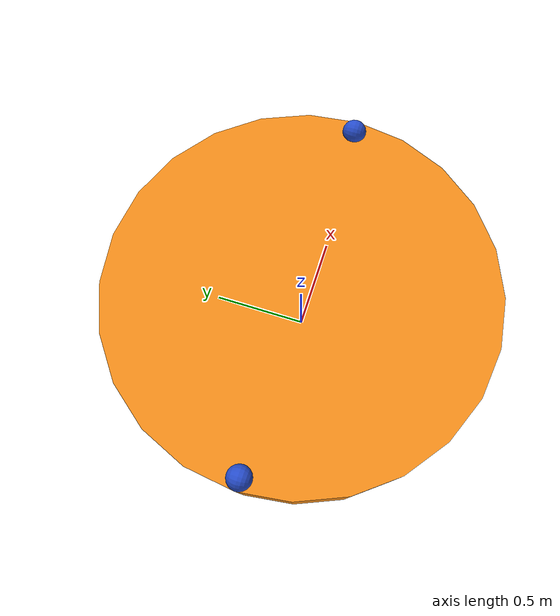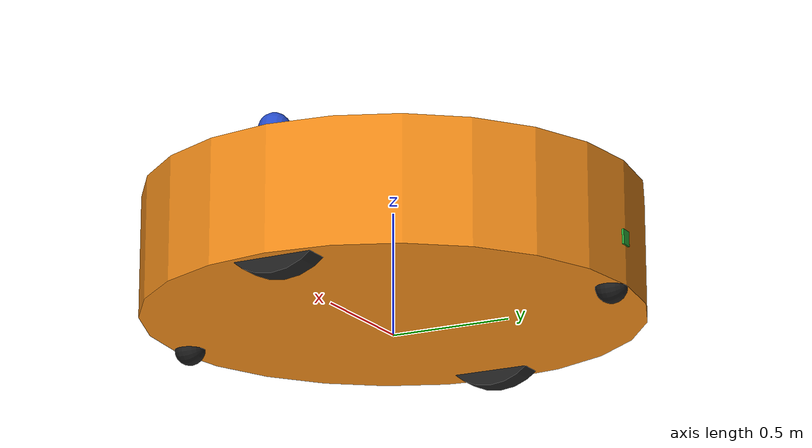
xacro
<?xml version ="1.0"?>
<robot name="basicbot" xmlns:xacro="http://www.ros.org/wiki/xacro">

  <!-- Constants for robot dimensions -->
  <xacro:property name="PI" value="3.1415926535897931"/>

  <!-- Chassis (Cylinder) -->
  <xacro:property name="base_link_mass" value="1"/>
  <xacro:property name="base_link_radius" value="1"/>
  <xacro:property name="base_link_height" value="0.5"/>
  <xacro:property name="chassis_lift_percentage" value="0.25"/> <!-- How much to lift chassis as prop of wheel radius. -->

  <!-- Wheels (Cylinder) -->
  <xacro:property name="wheel_mass" value="0.3"/>
  <xacro:property name="wheel_radius" value="0.25"/>
  <xacro:property name="wheel_width" value="0.1"/>
  <xacro:property name="wheel_vert_offset" value="${wheel_radius}"/>

  <!-- Casters (Spheres) -->
  <xacro:property name="caster_mass" value="0.1"/>
  <xacro:property name="caster_radius" value="${wheel_radius*chassis_lift_percentage}"/>

  <!-- Eyes (Spheres) -->
  <xacro:property name="eye_mass" value="0.1"/>
  <xacro:property name="eye_radius" value="${wheel_radius*chassis_lift_percentage}"/>

  <!-- vertical shift for entire robot -->
  <xacro:property name="vert_offset" value="${wheel_radius*chassis_lift_percentage+base_link_height/2.0}"/>

  <!-- Import all Gazebo customization elements, including colors -->
  <xacro:include filename="$(find basicbot_description)/urdf/basicbot.gazebo"/>

  <!-- Import Rviz colors -->
  <xacro:include filename="$(find basicbot_description)/urdf/materials.xacro"/>

  <!-- Wheel Macro -->
  <xacro:macro name="wheel" params="prefix reflect xmod">
    <link name="${prefix}_wheel" parent="base_link">
      <collision>
        <origin xyz="0 0 0" rpy="0 1.5707 1.5707"/>
        <geometry>
          <cylinder length="${wheel_width}" radius="${wheel_radius}"/>
        </geometry>
      </collision>

      <visual>
        <origin xyz="0 0 0" rpy="0 1.5707 1.5707"/>
        <geometry>
          <cylinder length="${wheel_width}" radius="${wheel_radius}"/>
        </geometry>
        <material name="black"/>
      </visual>

      <inertial>
        <origin xyz="0 0 0" rpy="0 1.5707 1.5707"/>
        <mass value="${wheel_mass}"/>
        <inertia
          ixx="${(wheel_mass/12.0)*(3.0*wheel_radius*wheel_radius + wheel_width*wheel_width)}" ixy="0.0" ixz="0.0"
          iyy="${(wheel_mass/12.0)*(3.0*wheel_radius*wheel_radius + wheel_width*wheel_width)}" iyz="0.0"
          izz="${(wheel_mass*wheel_radius*wheel_radius)/2.0}"
        />
      </inertial>
    </link>

    <joint name="${prefix}_wheel_to_base_link" type="continuous">
      <parent link="base_link"/>
      <child link="${prefix}_wheel"/>
      <limit effort="100" velocity="${PI}"/>
      <axis xyz="0 1 0"/>
      <origin xyz="${reflect*(-wheel_width+base_link_radius)} 0 ${wheel_vert_offset}" rpy="0 1.5707 1.5707"/>
    </joint>
  </xacro:macro>

  <!-- Caster Macro -->
  <xacro:macro name="caster" params="prefix reflect xmod">
    <link name="${prefix}_caster" parent="base_link">
      <collision>
        <origin xyz="0 0 0" rpy="0 1.5707 1.5707"/>
        <geometry>
          <sphere radius="${caster_radius}"/>
        </geometry>
      </collision>

      <visual>
        <origin xyz="0 0 0" rpy="0 1.5707 1.5707"/>
        <geometry>
          <sphere radius="${caster_radius}"/>
        </geometry>
        <material name="black"/>
      </visual>

      <inertial>
        <origin xyz="0 0 0" rpy="0 1.5707 1.5707"/>
        <mass value="${caster_mass}"/>
        <inertia
          ixx="${(2.0*caster_mass*caster_radius*caster_radius)/5.0}" ixy="0.0" ixz="0.0"
          iyy="${(2.0*caster_mass*caster_radius*caster_radius)/5.0}" iyz="0.0"
          izz="${(2.0*caster_mass*caster_radius*caster_radius)/5.0}"
        />
      </inertial>
    </link>

    <joint name="${prefix}_caster_to_base_link" type="continuous">
      <parent link="base_link"/>
      <child link="${prefix}_caster"/>
      <origin xyz="0 ${reflect*(-caster_radius+base_link_radius)} ${caster_radius}" rpy="0 0 0"/>
      <limit effort="30" velocity="1.0" />
    </joint>
  </xacro:macro>

  <!-- Eye Macro -->
  <xacro:macro name="eye" params="prefix reflect">
    <link name="${prefix}_eye" parent="base_link">
      <collision>
        <origin xyz="0 0 0" rpy="0 1.5707 1.5707"/>
        <geometry>
          <sphere radius="${eye_radius}"/>
        </geometry>
      </collision>

      <visual>
        <origin xyz="0 0 0" rpy="0 1.5707 1.5707"/>
        <geometry>
          <sphere radius="${eye_radius}"/>
        </geometry>
        <material name="blue"/>
      </visual>

      <inertial>
        <origin xyz="0 0 0" rpy="0 1.5707 1.5707"/>
        <mass value="${eye_mass}"/>
        <inertia
          ixx="${(2.0*eye_mass*eye_radius*eye_radius)/5.0}" ixy="0.0" ixz="0.0"
          iyy="${(2.0*eye_mass*eye_radius*eye_radius)/5.0}" iyz="0.0"
          izz="${(2.0*eye_mass*eye_radius*eye_radius)/5.0}"
        />
      </inertial>
    </link>

    <joint name="${prefix}_eye_to_base_link" type="continuous">
      <origin xyz="${reflect*(-eye_radius+base_link_radius)} 0 ${eye_radius+base_link_height}" rpy="0 0 0"/>
      <parent link="base_link"/>
      <child link="${prefix}_eye"/>
    </joint>
  </xacro:macro>

  <!-- Base Link -->
  <link name="base_link">
    <collision>
      <origin xyz = "0 0 ${vert_offset}" rpy="0 0 0"/>
      <geometry>
        <cylinder length="${base_link_height}" radius="${base_link_radius}"/>
      </geometry>
    </collision>

    <visual>
      <origin xyz = "0 0 ${vert_offset}" rpy="0 0 0"/>
      <geometry>
        <cylinder length="${base_link_height}" radius="${base_link_radius}"/>
      </geometry>
      <material name="orange"/>
    </visual>

    <inertial>
      <origin xyz = "0 0 ${vert_offset}" rpy="0 0 0"/>
      <mass value="${base_link_mass}"/>
      <inertia
        ixx="${(base_link_mass/12.0)*(3.0*base_link_radius*base_link_radius + base_link_height*base_link_height)}" ixy="0.0" ixz="0.0"
        iyy="${(base_link_mass/12.0)*(3.0*base_link_radius*base_link_radius + base_link_height*base_link_height)}" iyz="0.0"
        izz="${(base_link_mass*base_link_radius*base_link_radius)/2.0}"/>
    </inertial>
        <!-- ixx="${(base_link_mass/12.0)*(3.0*base_link_radius*base_link_radius + base_link_height*base_link_height)}" ixy="0.0" ixz="0.0" -->
        <!-- iyy="${(base_link_mass/12.0)*(3.0*base_link_radius*base_link_radius + base_link_height*base_link_height)}" iyz="0.0" -->
  </link>

  <!-- Wheels -->
  <xacro:wheel prefix="right" reflect="1.0" xmod="-0.75"/>
  <xacro:wheel prefix="left" reflect="-1.0" xmod="-0.75"/>

  <!-- Caster -->
  <xacro:caster prefix="front" reflect="1.0" xmod="-0.75"/>
  <xacro:caster prefix="back" reflect="-1.0" xmod="-0.75"/>

  <!-- Eye -->
  <xacro:eye prefix="right" reflect="-1.0"/>
  <xacro:eye prefix="left" reflect="1.0"/>

  <link name="base_laser_link">
    <visual>
      <geometry>
        <box size="0.01 0.05 0.06" />
      </geometry>
      <material name="Green" />
    </visual>
    <inertial>
      <mass value="0.000001" />
      <origin xyz="0 0 0" />
      <inertia ixx="0.0001" ixy="0.0" ixz="0.0"
        iyy="0.0001" iyz="0.0"
        izz="0.0001" />
    </inertial>
  </link>

  <joint name="laser" type="fixed">
    <origin xyz="0.00 ${base_link_radius} ${base_link_height/2.0}" rpy="0 0 1.5707" />
    <parent link="base_link" />
    <child link="base_laser_link" />
  </joint>

  <gazebo>
    <plugin name="differential_drive_controller" filename="libgazebo_ros_diff_drive.so">
      <legacyMode>true</legacyMode>
      <rosDebugLevel>Error</rosDebugLevel>
      <commandTopic>cmd_vel</commandTopic>
      <leftJoint>left_wheel_to_base_link</leftJoint>
      <rightJoint>right_wheel_to_base_link</rightJoint>
      <robotBaseFrame>base_link</robotBaseFrame>
      <wheelSeparation>${(-wheel_width+base_link_radius)*2.0}</wheelSeparation>
      <wheelDiameter>${wheel_radius*2.0}</wheelDiameter>
      <publishWheelJointState>true</publishWheelJointState>
    </plugin>
  </gazebo>

  <gazebo reference="base_laser_link">
      <sensor name="ray_sensor" type="ray">
        <pose>0.01 0 0.0175 0 -0 0</pose>
        <visualize>true</visualize>
        <ray>
          <scan>
            <horizontal>
              <samples>7</samples>
              <resolution>1</resolution>
              <min_angle>-0.6981</min_angle>
              <max_angle>0.6981</max_angle>
            </horizontal>
          </scan>
          <range>
            <min>0.08</min>
            <max>10</max>
            <resolution>0.01</resolution>
          </range>
          <noise>
            <type>gaussian</type>
            <mean>0.0</mean>
            <stddev>0.00</stddev>
          </noise>
        </ray>
        <plugin name="laser_node" filename="libgazebo_ros_laser.so">
           <topicName>/laser_scanner</topicName>
           <frameName>base_laser_link</frameName>
        </plugin>
      </sensor>
  </gazebo>

</robot>
